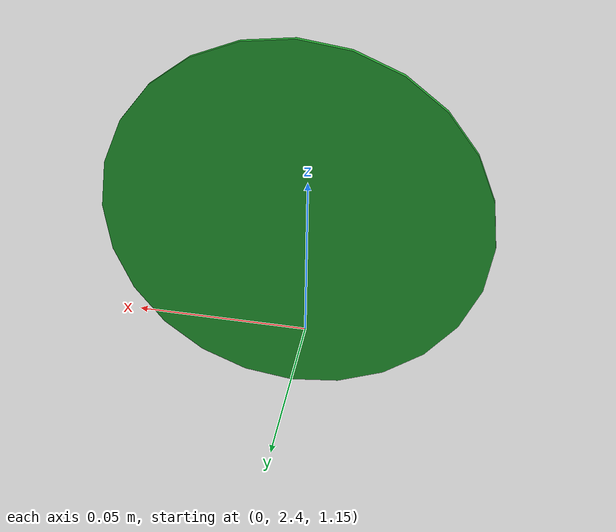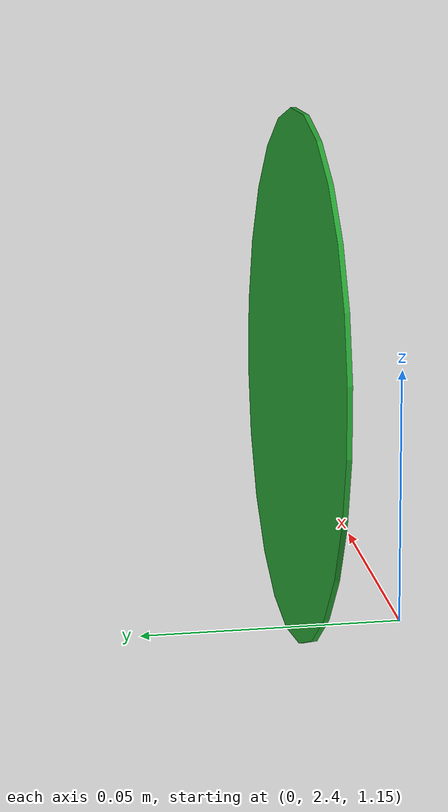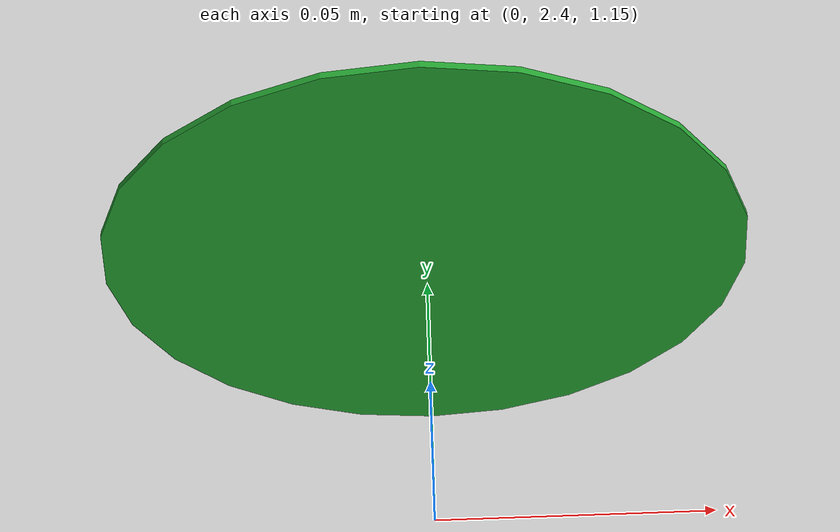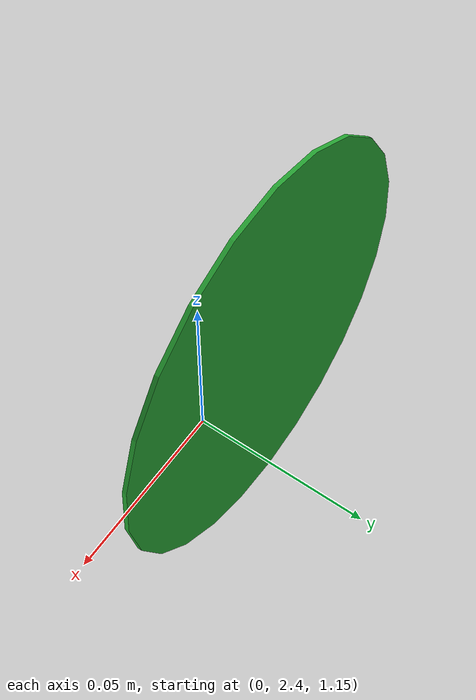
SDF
<sdf version="1.6">
  <model name='Target'>
      <pose>0 2.42 1.2 1.6 0 0</pose>
      <link name='link'>
        <gravity> false </gravity>
        <collision name='collision'>
          <geometry>
            <cylinder>
              <radius> 0.05 </radius>
              <length> 0.001 </length>
          </cylinder>
          </geometry>
          <max_contacts>10</max_contacts>
          <surface>
            <contact>
              <ode/>
            </contact>
            <bounce/>
            <friction>
              <ode/>
            </friction>
          </surface>
        </collision>
        <visual name='visual'>
          <geometry>
            <cylinder>
              <radius> 0.05 </radius>
              <length> 0.001 </length>
            </cylinder>
          </geometry>
          <material>
            <script>
              <uri>file://media/materials/scripts/gazebo.material</uri>
              <name>Gazebo/Green</name>
            </script>
          </material>
        </visual>
        <self_collide>0</self_collide>
        <inertial>
          <inertia>
            <ixx>1</ixx>
            <ixy>0</ixy>
            <ixz>0</ixz>
            <iyy>1</iyy>
            <iyz>0</iyz>
            <izz>1</izz>
          </inertia>
          <mass>1</mass>
        </inertial>
        <kinematic>0</kinematic>
        <gravity>1</gravity>
      </link>
      <plugin name='target' filename='NRPGazeboGrpcModelControllerPlugin.so'/>
    </model>
</sdf>
